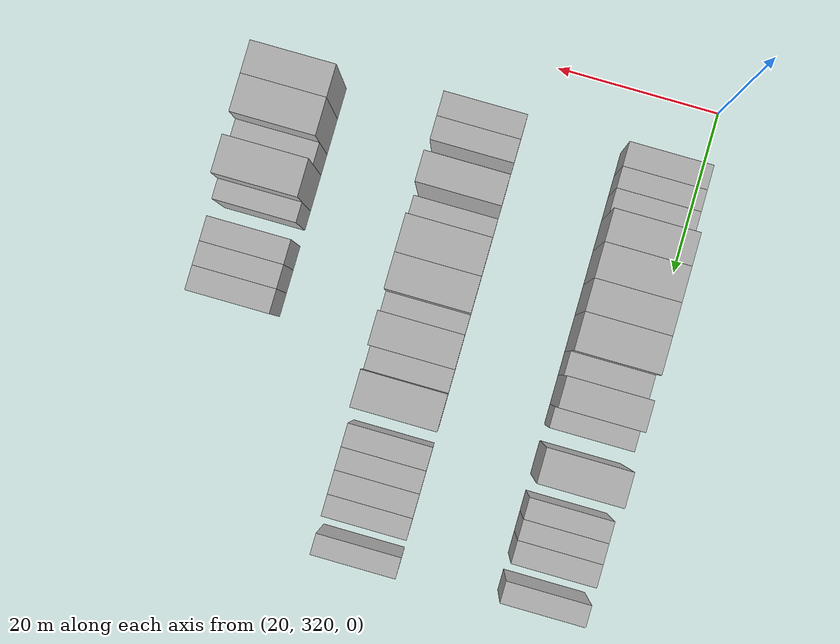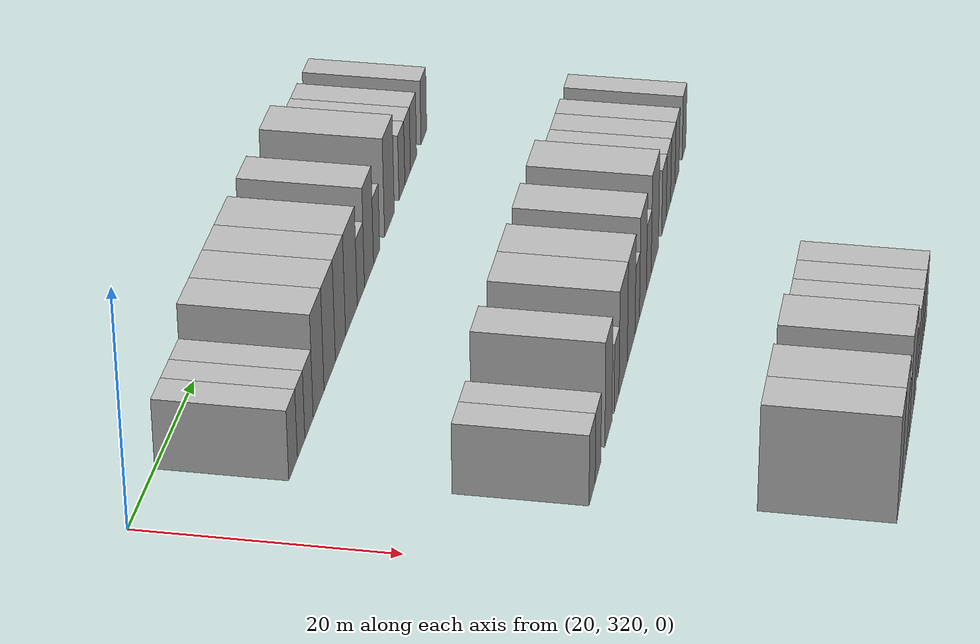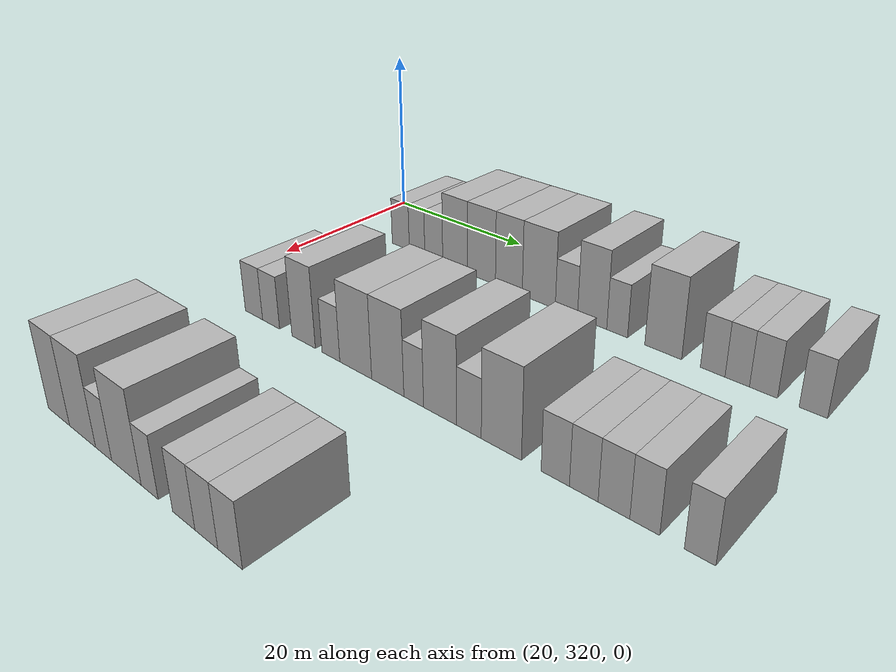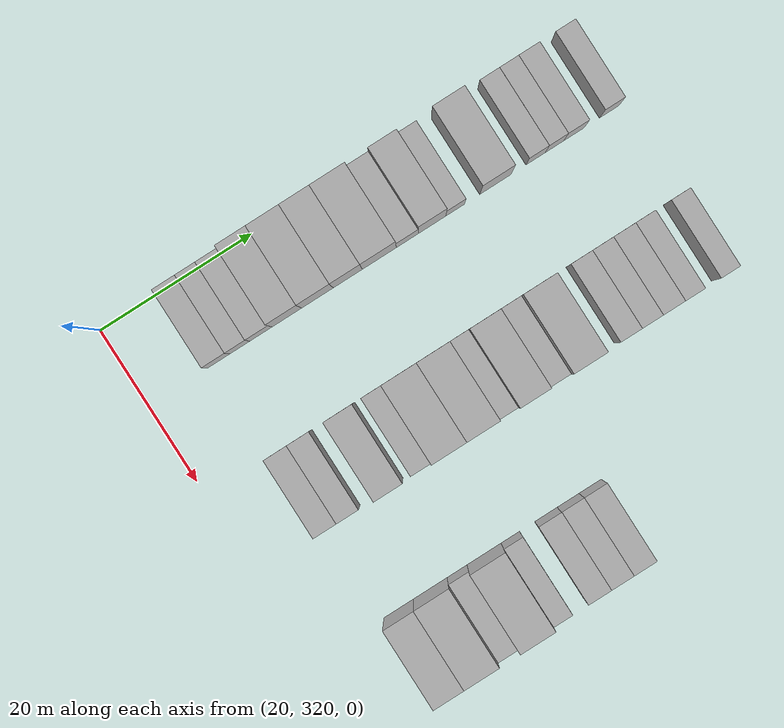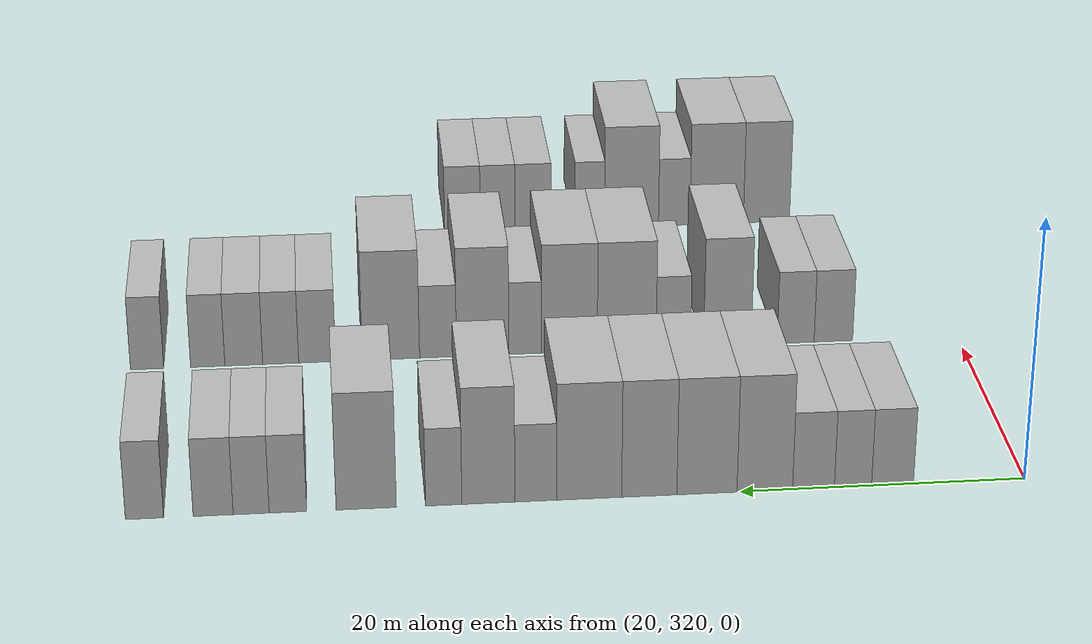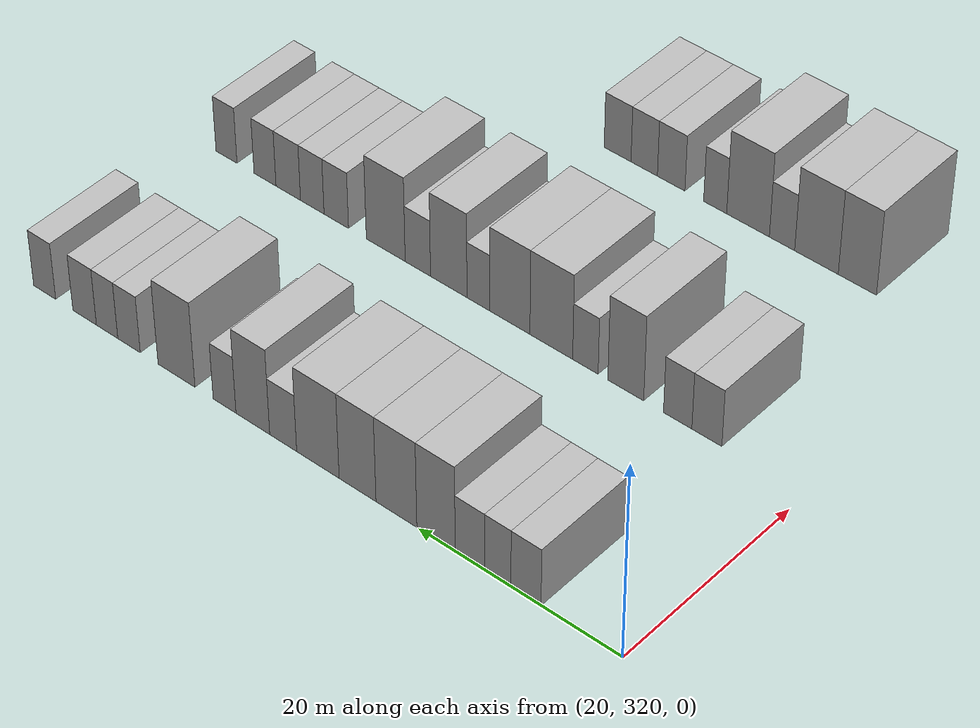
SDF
<sdf version="1.6">
 <world name="default">
  <model name="building_170">
   <static>1</static>
   <pose>25.0000 329.3556 0 0.000000 0.000000 0.000000</pose>
   <link name="link">
    <pose>0 0 3.00 0 0 0</pose>
    <collision name="collision"><geometry><box><size>10.0000 2.9465 6.0000</size></box></geometry></collision>
    <visual name="visual">
     <cast_shadows>0</cast_shadows>
     <geometry><box><size>10.0000 2.9465 6.0000</size></box></geometry>
     <material>
      <script>
       <uri>model://HANNAS_wall/materials/scripts</uri>
       <uri>model://HANNAS_wall/materials/textures</uri>
       <name>vrc/HANNAS_wall</name>
      </script>
     </material>
    </visual>
   </link>
  </model>
  <model name="building_171">
   <static>1</static>
   <pose>25.0000 332.1304 0 0.000000 0.000000 0.000000</pose>
   <link name="link">
    <pose>0 0 3.00 0 0 0</pose>
    <collision name="collision"><geometry><box><size>10.0000 2.6031 6.0000</size></box></geometry></collision>
    <visual name="visual">
     <cast_shadows>0</cast_shadows>
     <geometry><box><size>10.0000 2.6031 6.0000</size></box></geometry>
     <material>
      <script>
       <uri>model://HANNAS_wall/materials/scripts</uri>
       <uri>model://HANNAS_wall/materials/textures</uri>
       <name>vrc/HANNAS_wall</name>
      </script>
     </material>
    </visual>
   </link>
  </model>
  <model name="building_172">
   <static>1</static>
   <pose>25.0000 334.8948 0 0.000000 0.000000 0.000000</pose>
   <link name="link">
    <pose>0 0 3.00 0 0 0</pose>
    <collision name="collision"><geometry><box><size>10.0000 2.9257 6.0000</size></box></geometry></collision>
    <visual name="visual">
     <cast_shadows>0</cast_shadows>
     <geometry><box><size>10.0000 2.9257 6.0000</size></box></geometry>
     <material>
      <script>
       <uri>model://HANNAS_wall/materials/scripts</uri>
       <uri>model://HANNAS_wall/materials/textures</uri>
       <name>vrc/HANNAS_wall</name>
      </script>
     </material>
    </visual>
   </link>
  </model>
  <model name="building_173">
   <static>1</static>
   <pose>25.0000 338.2968 0 0.000000 0.000000 0.000000</pose>
   <link name="link">
    <pose>0 0 4.50 0 0 0</pose>
    <collision name="collision"><geometry><box><size>10.0000 3.8784 9.0000</size></box></geometry></collision>
    <visual name="visual">
     <cast_shadows>0</cast_shadows>
     <geometry><box><size>10.0000 3.8784 9.0000</size></box></geometry>
     <material>
      <script>
       <uri>model://HANNAS_wall/materials/scripts</uri>
       <uri>model://HANNAS_wall/materials/textures</uri>
       <name>vrc/HANNAS_wall</name>
      </script>
     </material>
    </visual>
   </link>
  </model>
  <model name="building_174">
   <static>1</static>
   <pose>25.0000 342.3280 0 0.000000 0.000000 0.000000</pose>
   <link name="link">
    <pose>0 0 4.50 0 0 0</pose>
    <collision name="collision"><geometry><box><size>10.0000 4.1838 9.0000</size></box></geometry></collision>
    <visual name="visual">
     <cast_shadows>0</cast_shadows>
     <geometry><box><size>10.0000 4.1838 9.0000</size></box></geometry>
     <material>
      <script>
       <uri>model://HANNAS_wall/materials/scripts</uri>
       <uri>model://HANNAS_wall/materials/textures</uri>
       <name>vrc/HANNAS_wall</name>
      </script>
     </material>
    </visual>
   </link>
  </model>
  <model name="building_175">
   <static>1</static>
   <pose>25.0000 346.3346 0 0.000000 0.000000 0.000000</pose>
   <link name="link">
    <pose>0 0 4.50 0 0 0</pose>
    <collision name="collision"><geometry><box><size>10.0000 3.8296 9.0000</size></box></geometry></collision>
    <visual name="visual">
     <cast_shadows>0</cast_shadows>
     <geometry><box><size>10.0000 3.8296 9.0000</size></box></geometry>
     <material>
      <script>
       <uri>model://HANNAS_wall/materials/scripts</uri>
       <uri>model://HANNAS_wall/materials/textures</uri>
       <name>vrc/HANNAS_wall</name>
      </script>
     </material>
    </visual>
   </link>
  </model>
  <model name="building_176">
   <static>1</static>
   <pose>25.0000 350.4904 0 0.000000 0.000000 0.000000</pose>
   <link name="link">
    <pose>0 0 4.50 0 0 0</pose>
    <collision name="collision"><geometry><box><size>10.0000 4.4819 9.0000</size></box></geometry></collision>
    <visual name="visual">
     <cast_shadows>0</cast_shadows>
     <geometry><box><size>10.0000 4.4819 9.0000</size></box></geometry>
     <material>
      <script>
       <uri>model://HANNAS_wall/materials/scripts</uri>
       <uri>model://HANNAS_wall/materials/textures</uri>
       <name>vrc/HANNAS_wall</name>
      </script>
     </material>
    </visual>
   </link>
  </model>
  <model name="building_177">
   <static>1</static>
   <pose>25.0000 354.1709 0 0.000000 0.000000 0.000000</pose>
   <link name="link">
    <pose>0 0 3.00 0 0 0</pose>
    <collision name="collision"><geometry><box><size>10.0000 2.8792 6.0000</size></box></geometry></collision>
    <visual name="visual">
     <cast_shadows>0</cast_shadows>
     <geometry><box><size>10.0000 2.8792 6.0000</size></box></geometry>
     <material>
      <script>
       <uri>model://HANNAS_wall/materials/scripts</uri>
       <uri>model://HANNAS_wall/materials/textures</uri>
       <name>vrc/HANNAS_wall</name>
      </script>
     </material>
    </visual>
   </link>
  </model>
  <model name="building_178">
   <static>1</static>
   <pose>25.0000 357.4337 0 0.000000 0.000000 0.000000</pose>
   <link name="link">
    <pose>0 0 4.50 0 0 0</pose>
    <collision name="collision"><geometry><box><size>10.0000 3.6463 9.0000</size></box></geometry></collision>
    <visual name="visual">
     <cast_shadows>0</cast_shadows>
     <geometry><box><size>10.0000 3.6463 9.0000</size></box></geometry>
     <material>
      <script>
       <uri>model://HANNAS_wall/materials/scripts</uri>
       <uri>model://HANNAS_wall/materials/textures</uri>
       <name>vrc/HANNAS_wall</name>
      </script>
     </material>
    </visual>
   </link>
  </model>
  <model name="building_179">
   <static>1</static>
   <pose>25.0000 360.5016 0 0.000000 0.000000 0.000000</pose>
   <link name="link">
    <pose>0 0 3.00 0 0 0</pose>
    <collision name="collision"><geometry><box><size>10.0000 2.4896 6.0000</size></box></geometry></collision>
    <visual name="visual">
     <cast_shadows>0</cast_shadows>
     <geometry><box><size>10.0000 2.4896 6.0000</size></box></geometry>
     <material>
      <script>
       <uri>model://HANNAS_wall/materials/scripts</uri>
       <uri>model://HANNAS_wall/materials/textures</uri>
       <name>vrc/HANNAS_wall</name>
      </script>
     </material>
    </visual>
   </link>
  </model>
  <model name="building_180">
   <static>1</static>
   <pose>25.0000 365.8027 0 0.000000 0.000000 0.000000</pose>
   <link name="link">
    <pose>0 0 4.50 0 0 0</pose>
    <collision name="collision"><geometry><box><size>10.0000 4.1126 9.0000</size></box></geometry></collision>
    <visual name="visual">
     <cast_shadows>0</cast_shadows>
     <geometry><box><size>10.0000 4.1126 9.0000</size></box></geometry>
     <material>
      <script>
       <uri>model://HANNAS_wall/materials/scripts</uri>
       <uri>model://HANNAS_wall/materials/textures</uri>
       <name>vrc/HANNAS_wall</name>
      </script>
     </material>
    </visual>
   </link>
  </model>
  <model name="building_181">
   <static>1</static>
   <pose>25.0000 371.1342 0 0.000000 0.000000 0.000000</pose>
   <link name="link">
    <pose>0 0 3.00 0 0 0</pose>
    <collision name="collision"><geometry><box><size>10.0000 2.5502 6.0000</size></box></geometry></collision>
    <visual name="visual">
     <cast_shadows>0</cast_shadows>
     <geometry><box><size>10.0000 2.5502 6.0000</size></box></geometry>
     <material>
      <script>
       <uri>model://HANNAS_wall/materials/scripts</uri>
       <uri>model://HANNAS_wall/materials/textures</uri>
       <name>vrc/HANNAS_wall</name>
      </script>
     </material>
    </visual>
   </link>
  </model>
  <model name="building_182">
   <static>1</static>
   <pose>25.0000 373.6312 0 0.000000 0.000000 0.000000</pose>
   <link name="link">
    <pose>0 0 3.00 0 0 0</pose>
    <collision name="collision"><geometry><box><size>10.0000 2.4437 6.0000</size></box></geometry></collision>
    <visual name="visual">
     <cast_shadows>0</cast_shadows>
     <geometry><box><size>10.0000 2.4437 6.0000</size></box></geometry>
     <material>
      <script>
       <uri>model://HANNAS_wall/materials/scripts</uri>
       <uri>model://HANNAS_wall/materials/textures</uri>
       <name>vrc/HANNAS_wall</name>
      </script>
     </material>
    </visual>
   </link>
  </model>
  <model name="building_183">
   <static>1</static>
   <pose>25.0000 376.2066 0 0.000000 0.000000 0.000000</pose>
   <link name="link">
    <pose>0 0 3.00 0 0 0</pose>
    <collision name="collision"><geometry><box><size>10.0000 2.7072 6.0000</size></box></geometry></collision>
    <visual name="visual">
     <cast_shadows>0</cast_shadows>
     <geometry><box><size>10.0000 2.7072 6.0000</size></box></geometry>
     <material>
      <script>
       <uri>model://HANNAS_wall/materials/scripts</uri>
       <uri>model://HANNAS_wall/materials/textures</uri>
       <name>vrc/HANNAS_wall</name>
      </script>
     </material>
    </visual>
   </link>
  </model>
  <model name="building_184">
   <static>1</static>
   <pose>25.0000 380.8460 0 0.000000 0.000000 0.000000</pose>
   <link name="link">
    <pose>0 0 3.00 0 0 0</pose>
    <collision name="collision"><geometry><box><size>10.0000 2.5715 6.0000</size></box></geometry></collision>
    <visual name="visual">
     <cast_shadows>0</cast_shadows>
     <geometry><box><size>10.0000 2.5715 6.0000</size></box></geometry>
     <material>
      <script>
       <uri>model://HANNAS_wall/materials/scripts</uri>
       <uri>model://HANNAS_wall/materials/textures</uri>
       <name>vrc/HANNAS_wall</name>
      </script>
     </material>
    </visual>
   </link>
  </model>
  <model name="building_362">
   <static>1</static>
   <pose>47.0000 329.5957 0 0.000000 0.000000 0.000000</pose>
   <link name="link">
    <pose>0 0 3.00 0 0 0</pose>
    <collision name="collision"><geometry><box><size>10.0000 2.9752 6.0000</size></box></geometry></collision>
    <visual name="visual">
     <cast_shadows>0</cast_shadows>
     <geometry><box><size>10.0000 2.9752 6.0000</size></box></geometry>
     <material>
      <script>
       <uri>model://HANNAS_wall/materials/scripts</uri>
       <uri>model://HANNAS_wall/materials/textures</uri>
       <name>vrc/HANNAS_wall</name>
      </script>
     </material>
    </visual>
   </link>
  </model>
  <model name="building_363">
   <static>1</static>
   <pose>47.0000 332.5052 0 0.000000 0.000000 0.000000</pose>
   <link name="link">
    <pose>0 0 3.00 0 0 0</pose>
    <collision name="collision"><geometry><box><size>10.0000 2.8438 6.0000</size></box></geometry></collision>
    <visual name="visual">
     <cast_shadows>0</cast_shadows>
     <geometry><box><size>10.0000 2.8438 6.0000</size></box></geometry>
     <material>
      <script>
       <uri>model://HANNAS_wall/materials/scripts</uri>
       <uri>model://HANNAS_wall/materials/textures</uri>
       <name>vrc/HANNAS_wall</name>
      </script>
     </material>
    </visual>
   </link>
  </model>
  <model name="building_364">
   <static>1</static>
   <pose>47.0000 337.7546 0 0.000000 0.000000 0.000000</pose>
   <link name="link">
    <pose>0 0 4.50 0 0 0</pose>
    <collision name="collision"><geometry><box><size>10.0000 3.6550 9.0000</size></box></geometry></collision>
    <visual name="visual">
     <cast_shadows>0</cast_shadows>
     <geometry><box><size>10.0000 3.6550 9.0000</size></box></geometry>
     <material>
      <script>
       <uri>model://HANNAS_wall/materials/scripts</uri>
       <uri>model://HANNAS_wall/materials/textures</uri>
       <name>vrc/HANNAS_wall</name>
      </script>
     </material>
    </visual>
   </link>
  </model>
  <model name="building_365">
   <static>1</static>
   <pose>47.0000 341.8988 0 0.000000 0.000000 0.000000</pose>
   <link name="link">
    <pose>0 0 3.00 0 0 0</pose>
    <collision name="collision"><geometry><box><size>10.0000 2.6334 6.0000</size></box></geometry></collision>
    <visual name="visual">
     <cast_shadows>0</cast_shadows>
     <geometry><box><size>10.0000 2.6334 6.0000</size></box></geometry>
     <material>
      <script>
       <uri>model://HANNAS_wall/materials/scripts</uri>
       <uri>model://HANNAS_wall/materials/textures</uri>
       <name>vrc/HANNAS_wall</name>
      </script>
     </material>
    </visual>
   </link>
  </model>
  <model name="building_366">
   <static>1</static>
   <pose>47.0000 345.4534 0 0.000000 0.000000 0.000000</pose>
   <link name="link">
    <pose>0 0 4.50 0 0 0</pose>
    <collision name="collision"><geometry><box><size>10.0000 4.4756 9.0000</size></box></geometry></collision>
    <visual name="visual">
     <cast_shadows>0</cast_shadows>
     <geometry><box><size>10.0000 4.4756 9.0000</size></box></geometry>
     <material>
      <script>
       <uri>model://HANNAS_wall/materials/scripts</uri>
       <uri>model://HANNAS_wall/materials/textures</uri>
       <name>vrc/HANNAS_wall</name>
      </script>
     </material>
    </visual>
   </link>
  </model>
  <model name="building_367">
   <static>1</static>
   <pose>47.0000 349.8148 0 0.000000 0.000000 0.000000</pose>
   <link name="link">
    <pose>0 0 4.50 0 0 0</pose>
    <collision name="collision"><geometry><box><size>10.0000 4.2474 9.0000</size></box></geometry></collision>
    <visual name="visual">
     <cast_shadows>0</cast_shadows>
     <geometry><box><size>10.0000 4.2474 9.0000</size></box></geometry>
     <material>
      <script>
       <uri>model://HANNAS_wall/materials/scripts</uri>
       <uri>model://HANNAS_wall/materials/textures</uri>
       <name>vrc/HANNAS_wall</name>
      </script>
     </material>
    </visual>
   </link>
  </model>
  <model name="building_368">
   <static>1</static>
   <pose>47.0000 353.1732 0 0.000000 0.000000 0.000000</pose>
   <link name="link">
    <pose>0 0 3.00 0 0 0</pose>
    <collision name="collision"><geometry><box><size>10.0000 2.4692 6.0000</size></box></geometry></collision>
    <visual name="visual">
     <cast_shadows>0</cast_shadows>
     <geometry><box><size>10.0000 2.4692 6.0000</size></box></geometry>
     <material>
      <script>
       <uri>model://HANNAS_wall/materials/scripts</uri>
       <uri>model://HANNAS_wall/materials/textures</uri>
       <name>vrc/HANNAS_wall</name>
      </script>
     </material>
    </visual>
   </link>
  </model>
  <model name="building_369">
   <static>1</static>
   <pose>47.0000 356.3895 0 0.000000 0.000000 0.000000</pose>
   <link name="link">
    <pose>0 0 4.50 0 0 0</pose>
    <collision name="collision"><geometry><box><size>10.0000 3.9636 9.0000</size></box></geometry></collision>
    <visual name="visual">
     <cast_shadows>0</cast_shadows>
     <geometry><box><size>10.0000 3.9636 9.0000</size></box></geometry>
     <material>
      <script>
       <uri>model://HANNAS_wall/materials/scripts</uri>
       <uri>model://HANNAS_wall/materials/textures</uri>
       <name>vrc/HANNAS_wall</name>
      </script>
     </material>
    </visual>
   </link>
  </model>
  <model name="building_370">
   <static>1</static>
   <pose>47.0000 359.7651 0 0.000000 0.000000 0.000000</pose>
   <link name="link">
    <pose>0 0 3.00 0 0 0</pose>
    <collision name="collision"><geometry><box><size>10.0000 2.7875 6.0000</size></box></geometry></collision>
    <visual name="visual">
     <cast_shadows>0</cast_shadows>
     <geometry><box><size>10.0000 2.7875 6.0000</size></box></geometry>
     <material>
      <script>
       <uri>model://HANNAS_wall/materials/scripts</uri>
       <uri>model://HANNAS_wall/materials/textures</uri>
       <name>vrc/HANNAS_wall</name>
      </script>
     </material>
    </visual>
   </link>
  </model>
  <model name="building_371">
   <static>1</static>
   <pose>47.0000 363.3175 0 0.000000 0.000000 0.000000</pose>
   <link name="link">
    <pose>0 0 4.50 0 0 0</pose>
    <collision name="collision"><geometry><box><size>10.0000 4.3174 9.0000</size></box></geometry></collision>
    <visual name="visual">
     <cast_shadows>0</cast_shadows>
     <geometry><box><size>10.0000 4.3174 9.0000</size></box></geometry>
     <material>
      <script>
       <uri>model://HANNAS_wall/materials/scripts</uri>
       <uri>model://HANNAS_wall/materials/textures</uri>
       <name>vrc/HANNAS_wall</name>
      </script>
     </material>
    </visual>
   </link>
  </model>
  <model name="building_372">
   <static>1</static>
   <pose>47.0000 368.8625 0 0.000000 0.000000 0.000000</pose>
   <link name="link">
    <pose>0 0 3.00 0 0 0</pose>
    <collision name="collision"><geometry><box><size>10.0000 2.7726 6.0000</size></box></geometry></collision>
    <visual name="visual">
     <cast_shadows>0</cast_shadows>
     <geometry><box><size>10.0000 2.7726 6.0000</size></box></geometry>
     <material>
      <script>
       <uri>model://HANNAS_wall/materials/scripts</uri>
       <uri>model://HANNAS_wall/materials/textures</uri>
       <name>vrc/HANNAS_wall</name>
      </script>
     </material>
    </visual>
   </link>
  </model>
  <model name="building_373">
   <static>1</static>
   <pose>47.0000 371.5925 0 0.000000 0.000000 0.000000</pose>
   <link name="link">
    <pose>0 0 3.00 0 0 0</pose>
    <collision name="collision"><geometry><box><size>10.0000 2.6873 6.0000</size></box></geometry></collision>
    <visual name="visual">
     <cast_shadows>0</cast_shadows>
     <geometry><box><size>10.0000 2.6873 6.0000</size></box></geometry>
     <material>
      <script>
       <uri>model://HANNAS_wall/materials/scripts</uri>
       <uri>model://HANNAS_wall/materials/textures</uri>
       <name>vrc/HANNAS_wall</name>
      </script>
     </material>
    </visual>
   </link>
  </model>
  <model name="building_374">
   <static>1</static>
   <pose>47.0000 374.3512 0 0.000000 0.000000 0.000000</pose>
   <link name="link">
    <pose>0 0 3.00 0 0 0</pose>
    <collision name="collision"><geometry><box><size>10.0000 2.8302 6.0000</size></box></geometry></collision>
    <visual name="visual">
     <cast_shadows>0</cast_shadows>
     <geometry><box><size>10.0000 2.8302 6.0000</size></box></geometry>
     <material>
      <script>
       <uri>model://HANNAS_wall/materials/scripts</uri>
       <uri>model://HANNAS_wall/materials/textures</uri>
       <name>vrc/HANNAS_wall</name>
      </script>
     </material>
    </visual>
   </link>
  </model>
  <model name="building_375">
   <static>1</static>
   <pose>47.0000 377.0423 0 0.000000 0.000000 0.000000</pose>
   <link name="link">
    <pose>0 0 3.00 0 0 0</pose>
    <collision name="collision"><geometry><box><size>10.0000 2.5520 6.0000</size></box></geometry></collision>
    <visual name="visual">
     <cast_shadows>0</cast_shadows>
     <geometry><box><size>10.0000 2.5520 6.0000</size></box></geometry>
     <material>
      <script>
       <uri>model://HANNAS_wall/materials/scripts</uri>
       <uri>model://HANNAS_wall/materials/textures</uri>
       <name>vrc/HANNAS_wall</name>
      </script>
     </material>
    </visual>
   </link>
  </model>
  <model name="building_376">
   <static>1</static>
   <pose>47.0000 381.5546 0 0.000000 0.000000 0.000000</pose>
   <link name="link">
    <pose>0 0 3.00 0 0 0</pose>
    <collision name="collision"><geometry><box><size>10.0000 2.4726 6.0000</size></box></geometry></collision>
    <visual name="visual">
     <cast_shadows>0</cast_shadows>
     <geometry><box><size>10.0000 2.4726 6.0000</size></box></geometry>
     <material>
      <script>
       <uri>model://HANNAS_wall/materials/scripts</uri>
       <uri>model://HANNAS_wall/materials/textures</uri>
       <name>vrc/HANNAS_wall</name>
      </script>
     </material>
    </visual>
   </link>
  </model>
  <model name="building_554">
   <static>1</static>
   <pose>69.0000 331.3287 0 0.000000 0.000000 0.000000</pose>
   <link name="link">
    <pose>0 0 4.50 0 0 0</pose>
    <collision name="collision"><geometry><box><size>10.0000 3.8752 9.0000</size></box></geometry></collision>
    <visual name="visual">
     <cast_shadows>0</cast_shadows>
     <geometry><box><size>10.0000 3.8752 9.0000</size></box></geometry>
     <material>
      <script>
       <uri>model://HANNAS_wall/materials/scripts</uri>
       <uri>model://HANNAS_wall/materials/textures</uri>
       <name>vrc/HANNAS_wall</name>
      </script>
     </material>
    </visual>
   </link>
  </model>
  <model name="building_555">
   <static>1</static>
   <pose>69.0000 335.5026 0 0.000000 0.000000 0.000000</pose>
   <link name="link">
    <pose>0 0 4.50 0 0 0</pose>
    <collision name="collision"><geometry><box><size>10.0000 4.4726 9.0000</size></box></geometry></collision>
    <visual name="visual">
     <cast_shadows>0</cast_shadows>
     <geometry><box><size>10.0000 4.4726 9.0000</size></box></geometry>
     <material>
      <script>
       <uri>model://HANNAS_wall/materials/scripts</uri>
       <uri>model://HANNAS_wall/materials/textures</uri>
       <name>vrc/HANNAS_wall</name>
      </script>
     </material>
    </visual>
   </link>
  </model>
  <model name="building_556">
   <static>1</static>
   <pose>69.0000 339.0526 0 0.000000 0.000000 0.000000</pose>
   <link name="link">
    <pose>0 0 3.00 0 0 0</pose>
    <collision name="collision"><geometry><box><size>10.0000 2.6275 6.0000</size></box></geometry></collision>
    <visual name="visual">
     <cast_shadows>0</cast_shadows>
     <geometry><box><size>10.0000 2.6275 6.0000</size></box></geometry>
     <material>
      <script>
       <uri>model://HANNAS_wall/materials/scripts</uri>
       <uri>model://HANNAS_wall/materials/textures</uri>
       <name>vrc/HANNAS_wall</name>
      </script>
     </material>
    </visual>
   </link>
  </model>
  <model name="building_557">
   <static>1</static>
   <pose>69.0000 342.6087 0 0.000000 0.000000 0.000000</pose>
   <link name="link">
    <pose>0 0 4.50 0 0 0</pose>
    <collision name="collision"><geometry><box><size>10.0000 4.4847 9.0000</size></box></geometry></collision>
    <visual name="visual">
     <cast_shadows>0</cast_shadows>
     <geometry><box><size>10.0000 4.4847 9.0000</size></box></geometry>
     <material>
      <script>
       <uri>model://HANNAS_wall/materials/scripts</uri>
       <uri>model://HANNAS_wall/materials/textures</uri>
       <name>vrc/HANNAS_wall</name>
      </script>
     </material>
    </visual>
   </link>
  </model>
  <model name="building_558">
   <static>1</static>
   <pose>69.0000 346.0771 0 0.000000 0.000000 0.000000</pose>
   <link name="link">
    <pose>0 0 3.00 0 0 0</pose>
    <collision name="collision"><geometry><box><size>10.0000 2.4521 6.0000</size></box></geometry></collision>
    <visual name="visual">
     <cast_shadows>0</cast_shadows>
     <geometry><box><size>10.0000 2.4521 6.0000</size></box></geometry>
     <material>
      <script>
       <uri>model://HANNAS_wall/materials/scripts</uri>
       <uri>model://HANNAS_wall/materials/textures</uri>
       <name>vrc/HANNAS_wall</name>
      </script>
     </material>
    </visual>
   </link>
  </model>
  <model name="building_559">
   <static>1</static>
   <pose>69.0000 350.7894 0 0.000000 0.000000 0.000000</pose>
   <link name="link">
    <pose>0 0 3.00 0 0 0</pose>
    <collision name="collision"><geometry><box><size>10.0000 2.9725 6.0000</size></box></geometry></collision>
    <visual name="visual">
     <cast_shadows>0</cast_shadows>
     <geometry><box><size>10.0000 2.9725 6.0000</size></box></geometry>
     <material>
      <script>
       <uri>model://HANNAS_wall/materials/scripts</uri>
       <uri>model://HANNAS_wall/materials/textures</uri>
       <name>vrc/HANNAS_wall</name>
      </script>
     </material>
    </visual>
   </link>
  </model>
  <model name="building_560">
   <static>1</static>
   <pose>69.0000 353.7149 0 0.000000 0.000000 0.000000</pose>
   <link name="link">
    <pose>0 0 3.00 0 0 0</pose>
    <collision name="collision"><geometry><box><size>10.0000 2.8785 6.0000</size></box></geometry></collision>
    <visual name="visual">
     <cast_shadows>0</cast_shadows>
     <geometry><box><size>10.0000 2.8785 6.0000</size></box></geometry>
     <material>
      <script>
       <uri>model://HANNAS_wall/materials/scripts</uri>
       <uri>model://HANNAS_wall/materials/textures</uri>
       <name>vrc/HANNAS_wall</name>
      </script>
     </material>
    </visual>
   </link>
  </model>
  <model name="building_561">
   <static>1</static>
   <pose>69.0000 356.6251 0 0.000000 0.000000 0.000000</pose>
   <link name="link">
    <pose>0 0 3.00 0 0 0</pose>
    <collision name="collision"><geometry><box><size>10.0000 2.9419 6.0000</size></box></geometry></collision>
    <visual name="visual">
     <cast_shadows>0</cast_shadows>
     <geometry><box><size>10.0000 2.9419 6.0000</size></box></geometry>
     <material>
      <script>
       <uri>model://HANNAS_wall/materials/scripts</uri>
       <uri>model://HANNAS_wall/materials/textures</uri>
       <name>vrc/HANNAS_wall</name>
      </script>
     </material>
    </visual>
   </link>
  </model>
 </world>
</sdf>
